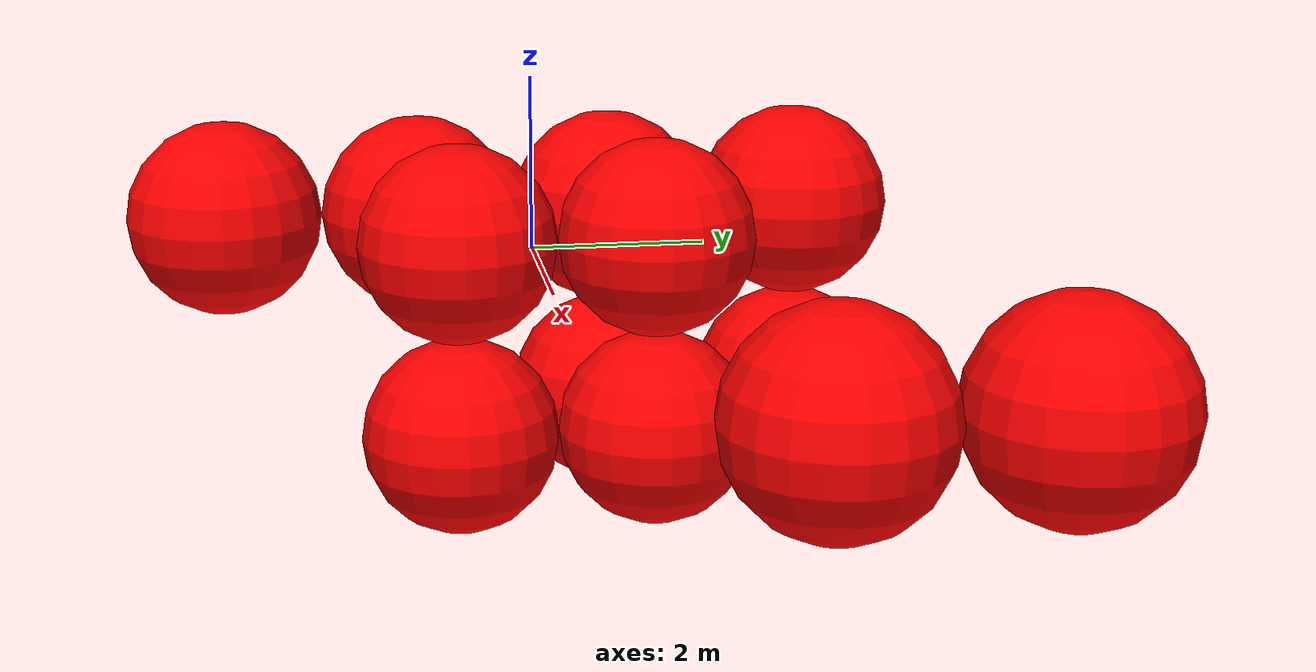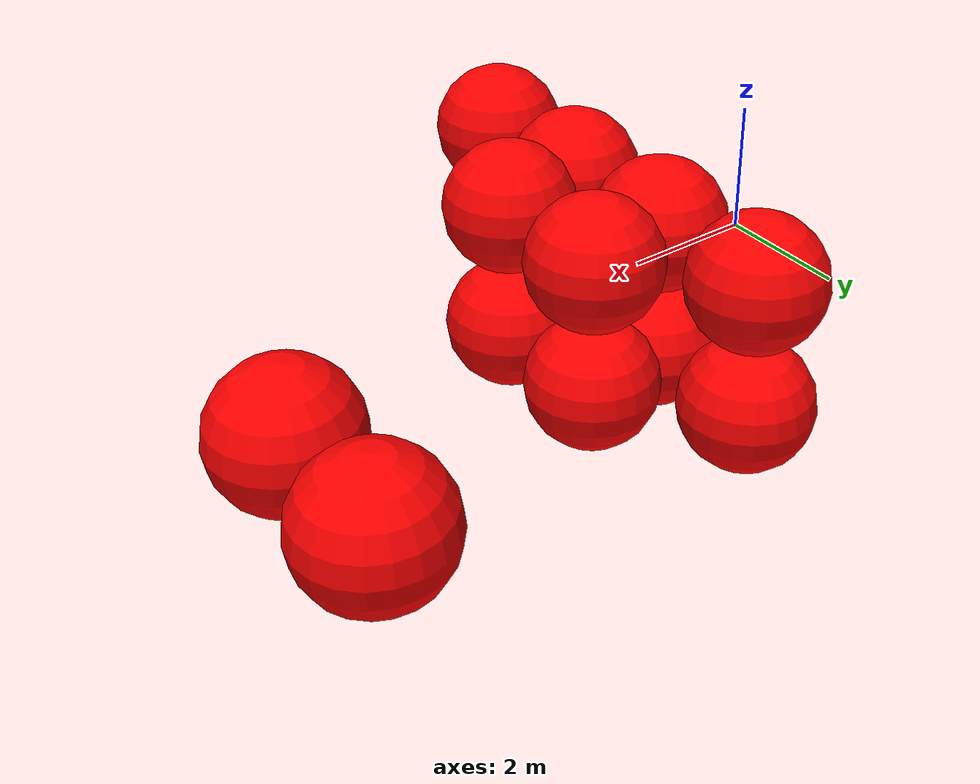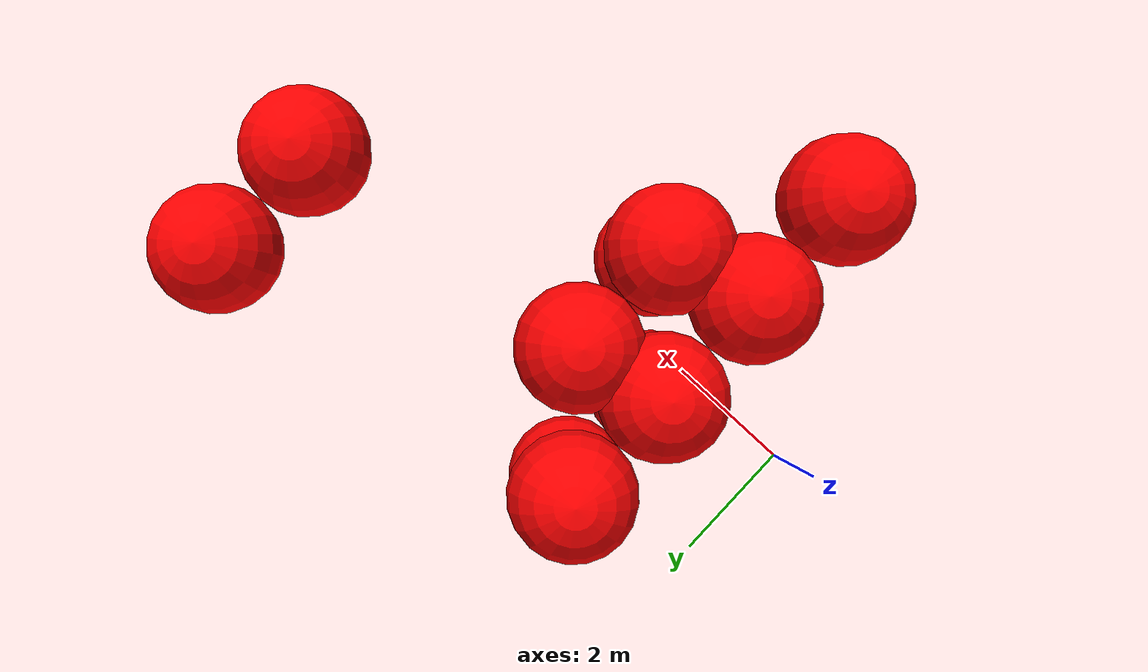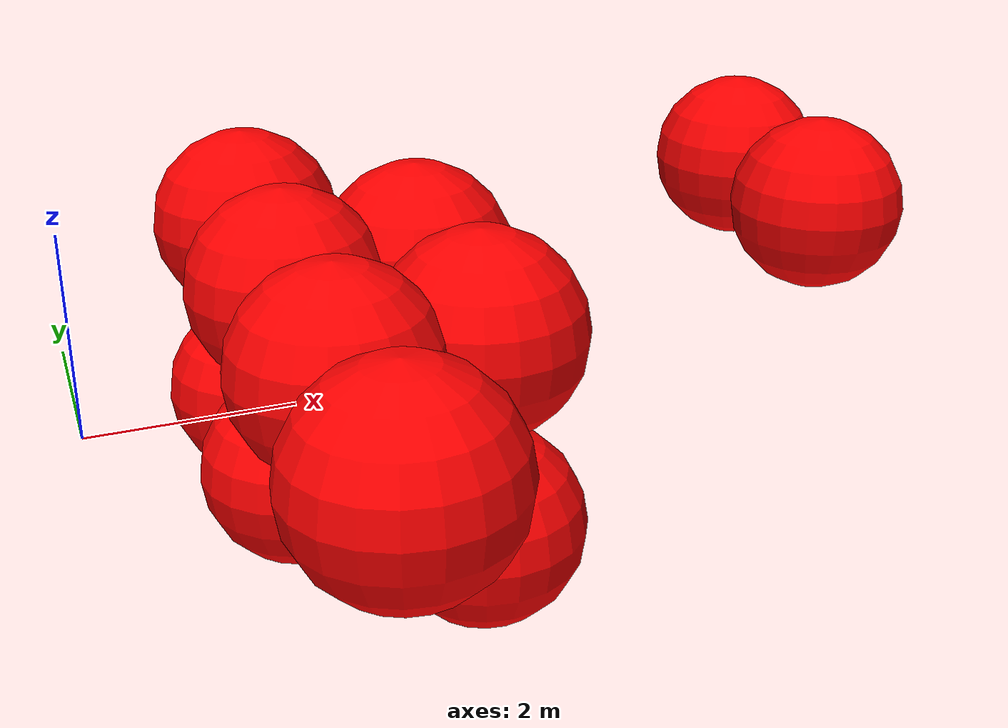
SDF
<sdf version="1.8">
 <world name="3d_world">
  <model name="obstacle_9" canonical_link="obstacle">
   <static>true</static>
   <pose relative_to="world">3.52 -1.14 -1.00 0 0 0</pose>
   <link name="obstacle">
    <pose relative_to="__model__">0.0 0 0.0 0 0 0</pose>
    <visual name="visual">
     <geometry><sphere><radius>1.00</radius></sphere></geometry>
     <material>
      <ambient>1.0 0.0 0.0 1</ambient>
      <diffuse>1.0 0.0 0.0 1</diffuse>
      <specular>1.0 0.0 0.0 1</specular>
     </material>
    </visual>
    <collision name="collision"><geometry><sphere><radius>1.00</radius></sphere></geometry></collision>
    <enable_gravity>false</enable_gravity>
   </link>
   <plugin filename="ignition-gazebo-velocity-control-system" name="ignition::gazebo::systems::VelocityControl">
    <initial_linear>0.00 0.00 0.00</initial_linear>
    <initial_angular>0 0 0</initial_angular>
   </plugin>
   <plugin filename="ignition-gazebo-odometry-publisher-system" name="ignition::gazebo::systems::OdometryPublisher">
    <dimensions>3</dimensions>
   </plugin>
  </model>
  <model name="obstacle_10" canonical_link="obstacle">
   <static>true</static>
   <pose relative_to="world">3.52 0.86 -1.00 0 0 0</pose>
   <link name="obstacle">
    <pose relative_to="__model__">0.0 0 0.0 0 0 0</pose>
    <visual name="visual">
     <geometry><sphere><radius>1.00</radius></sphere></geometry>
     <material>
      <ambient>1.0 0.0 0.0 1</ambient>
      <diffuse>1.0 0.0 0.0 1</diffuse>
      <specular>1.0 0.0 0.0 1</specular>
     </material>
    </visual>
    <collision name="collision"><geometry><sphere><radius>1.00</radius></sphere></geometry></collision>
    <enable_gravity>false</enable_gravity>
   </link>
   <plugin filename="ignition-gazebo-velocity-control-system" name="ignition::gazebo::systems::VelocityControl">
    <initial_linear>0.00 0.00 0.00</initial_linear>
    <initial_angular>0 0 0</initial_angular>
   </plugin>
   <plugin filename="ignition-gazebo-odometry-publisher-system" name="ignition::gazebo::systems::OdometryPublisher">
    <dimensions>3</dimensions>
   </plugin>
  </model>
  <model name="obstacle_11" canonical_link="obstacle">
   <static>true</static>
   <pose relative_to="world">3.52 -1.14 1.00 0 0 0</pose>
   <link name="obstacle">
    <pose relative_to="__model__">0.0 0 0.0 0 0 0</pose>
    <visual name="visual">
     <geometry><sphere><radius>1.00</radius></sphere></geometry>
     <material>
      <ambient>1.0 0.0 0.0 1</ambient>
      <diffuse>1.0 0.0 0.0 1</diffuse>
      <specular>1.0 0.0 0.0 1</specular>
     </material>
    </visual>
    <collision name="collision"><geometry><sphere><radius>1.00</radius></sphere></geometry></collision>
    <enable_gravity>false</enable_gravity>
   </link>
   <plugin filename="ignition-gazebo-velocity-control-system" name="ignition::gazebo::systems::VelocityControl">
    <initial_linear>0.00 0.00 0.00</initial_linear>
    <initial_angular>0 0 0</initial_angular>
   </plugin>
   <plugin filename="ignition-gazebo-odometry-publisher-system" name="ignition::gazebo::systems::OdometryPublisher">
    <dimensions>3</dimensions>
   </plugin>
  </model>
  <model name="obstacle_12" canonical_link="obstacle">
   <static>true</static>
   <pose relative_to="world">3.52 0.86 1.00 0 0 0</pose>
   <link name="obstacle">
    <pose relative_to="__model__">0.0 0 0.0 0 0 0</pose>
    <visual name="visual">
     <geometry><sphere><radius>1.00</radius></sphere></geometry>
     <material>
      <ambient>1.0 0.0 0.0 1</ambient>
      <diffuse>1.0 0.0 0.0 1</diffuse>
      <specular>1.0 0.0 0.0 1</specular>
     </material>
    </visual>
    <collision name="collision"><geometry><sphere><radius>1.00</radius></sphere></geometry></collision>
    <enable_gravity>false</enable_gravity>
   </link>
   <plugin filename="ignition-gazebo-velocity-control-system" name="ignition::gazebo::systems::VelocityControl">
    <initial_linear>0.00 0.00 0.00</initial_linear>
    <initial_angular>0 0 0</initial_angular>
   </plugin>
   <plugin filename="ignition-gazebo-odometry-publisher-system" name="ignition::gazebo::systems::OdometryPublisher">
    <dimensions>3</dimensions>
   </plugin>
  </model>
  <model name="obstacle_15" canonical_link="obstacle">
   <static>true</static>
   <pose relative_to="world">2.10 0.56 -1.00 0 0 0</pose>
   <link name="obstacle">
    <pose relative_to="__model__">0.0 0 0.0 0 0 0</pose>
    <visual name="visual">
     <geometry><sphere><radius>1.00</radius></sphere></geometry>
     <material>
      <ambient>1.0 0.0 0.0 1</ambient>
      <diffuse>1.0 0.0 0.0 1</diffuse>
      <specular>1.0 0.0 0.0 1</specular>
     </material>
    </visual>
    <collision name="collision"><geometry><sphere><radius>1.00</radius></sphere></geometry></collision>
    <enable_gravity>false</enable_gravity>
   </link>
   <plugin filename="ignition-gazebo-velocity-control-system" name="ignition::gazebo::systems::VelocityControl">
    <initial_linear>0.00 0.00 0.00</initial_linear>
    <initial_angular>0 0 0</initial_angular>
   </plugin>
   <plugin filename="ignition-gazebo-odometry-publisher-system" name="ignition::gazebo::systems::OdometryPublisher">
    <dimensions>3</dimensions>
   </plugin>
  </model>
  <model name="obstacle_16" canonical_link="obstacle">
   <static>true</static>
   <pose relative_to="world">2.10 2.56 -1.00 0 0 0</pose>
   <link name="obstacle">
    <pose relative_to="__model__">0.0 0 0.0 0 0 0</pose>
    <visual name="visual">
     <geometry><sphere><radius>1.00</radius></sphere></geometry>
     <material>
      <ambient>1.0 0.0 0.0 1</ambient>
      <diffuse>1.0 0.0 0.0 1</diffuse>
      <specular>1.0 0.0 0.0 1</specular>
     </material>
    </visual>
    <collision name="collision"><geometry><sphere><radius>1.00</radius></sphere></geometry></collision>
    <enable_gravity>false</enable_gravity>
   </link>
   <plugin filename="ignition-gazebo-velocity-control-system" name="ignition::gazebo::systems::VelocityControl">
    <initial_linear>0.00 0.00 0.00</initial_linear>
    <initial_angular>0 0 0</initial_angular>
   </plugin>
   <plugin filename="ignition-gazebo-odometry-publisher-system" name="ignition::gazebo::systems::OdometryPublisher">
    <dimensions>3</dimensions>
   </plugin>
  </model>
  <model name="obstacle_17" canonical_link="obstacle">
   <static>true</static>
   <pose relative_to="world">2.10 -3.44 1.00 0 0 0</pose>
   <link name="obstacle">
    <pose relative_to="__model__">0.0 0 0.0 0 0 0</pose>
    <visual name="visual">
     <geometry><sphere><radius>1.00</radius></sphere></geometry>
     <material>
      <ambient>1.0 0.0 0.0 1</ambient>
      <diffuse>1.0 0.0 0.0 1</diffuse>
      <specular>1.0 0.0 0.0 1</specular>
     </material>
    </visual>
    <collision name="collision"><geometry><sphere><radius>1.00</radius></sphere></geometry></collision>
    <enable_gravity>false</enable_gravity>
   </link>
   <plugin filename="ignition-gazebo-velocity-control-system" name="ignition::gazebo::systems::VelocityControl">
    <initial_linear>0.00 0.00 0.00</initial_linear>
    <initial_angular>0 0 0</initial_angular>
   </plugin>
   <plugin filename="ignition-gazebo-odometry-publisher-system" name="ignition::gazebo::systems::OdometryPublisher">
    <dimensions>3</dimensions>
   </plugin>
  </model>
  <model name="obstacle_18" canonical_link="obstacle">
   <static>true</static>
   <pose relative_to="world">2.10 -1.44 1.00 0 0 0</pose>
   <link name="obstacle">
    <pose relative_to="__model__">0.0 0 0.0 0 0 0</pose>
    <visual name="visual">
     <geometry><sphere><radius>1.00</radius></sphere></geometry>
     <material>
      <ambient>1.0 0.0 0.0 1</ambient>
      <diffuse>1.0 0.0 0.0 1</diffuse>
      <specular>1.0 0.0 0.0 1</specular>
     </material>
    </visual>
    <collision name="collision"><geometry><sphere><radius>1.00</radius></sphere></geometry></collision>
    <enable_gravity>false</enable_gravity>
   </link>
   <plugin filename="ignition-gazebo-velocity-control-system" name="ignition::gazebo::systems::VelocityControl">
    <initial_linear>0.00 0.00 0.00</initial_linear>
    <initial_angular>0 0 0</initial_angular>
   </plugin>
   <plugin filename="ignition-gazebo-odometry-publisher-system" name="ignition::gazebo::systems::OdometryPublisher">
    <dimensions>3</dimensions>
   </plugin>
  </model>
  <model name="obstacle_19" canonical_link="obstacle">
   <static>true</static>
   <pose relative_to="world">2.10 0.56 1.00 0 0 0</pose>
   <link name="obstacle">
    <pose relative_to="__model__">0.0 0 0.0 0 0 0</pose>
    <visual name="visual">
     <geometry><sphere><radius>1.00</radius></sphere></geometry>
     <material>
      <ambient>1.0 0.0 0.0 1</ambient>
      <diffuse>1.0 0.0 0.0 1</diffuse>
      <specular>1.0 0.0 0.0 1</specular>
     </material>
    </visual>
    <collision name="collision"><geometry><sphere><radius>1.00</radius></sphere></geometry></collision>
    <enable_gravity>false</enable_gravity>
   </link>
   <plugin filename="ignition-gazebo-velocity-control-system" name="ignition::gazebo::systems::VelocityControl">
    <initial_linear>0.00 0.00 0.00</initial_linear>
    <initial_angular>0 0 0</initial_angular>
   </plugin>
   <plugin filename="ignition-gazebo-odometry-publisher-system" name="ignition::gazebo::systems::OdometryPublisher">
    <dimensions>3</dimensions>
   </plugin>
  </model>
  <model name="obstacle_20" canonical_link="obstacle">
   <static>true</static>
   <pose relative_to="world">2.10 2.56 1.00 0 0 0</pose>
   <link name="obstacle">
    <pose relative_to="__model__">0.0 0 0.0 0 0 0</pose>
    <visual name="visual">
     <geometry><sphere><radius>1.00</radius></sphere></geometry>
     <material>
      <ambient>1.0 0.0 0.0 1</ambient>
      <diffuse>1.0 0.0 0.0 1</diffuse>
      <specular>1.0 0.0 0.0 1</specular>
     </material>
    </visual>
    <collision name="collision"><geometry><sphere><radius>1.00</radius></sphere></geometry></collision>
    <enable_gravity>false</enable_gravity>
   </link>
   <plugin filename="ignition-gazebo-velocity-control-system" name="ignition::gazebo::systems::VelocityControl">
    <initial_linear>0.00 0.00 0.00</initial_linear>
    <initial_angular>0 0 0</initial_angular>
   </plugin>
   <plugin filename="ignition-gazebo-odometry-publisher-system" name="ignition::gazebo::systems::OdometryPublisher">
    <dimensions>3</dimensions>
   </plugin>
  </model>
  <model name="obstacle_21" canonical_link="obstacle">
   <static>false</static>
   <pose relative_to="world">8.59 1.47 0.76 0 0 0</pose>
   <link name="obstacle">
    <pose relative_to="__model__">0.0 0 0.0 0 0 0</pose>
    <visual name="visual">
     <geometry><sphere><radius>1.00</radius></sphere></geometry>
     <material>
      <ambient>1.0 0.0 0.0 1</ambient>
      <diffuse>1.0 0.0 0.0 1</diffuse>
      <specular>1.0 0.0 0.0 1</specular>
     </material>
    </visual>
    <collision name="collision"><geometry><sphere><radius>1.00</radius></sphere></geometry></collision>
    <enable_gravity>false</enable_gravity>
   </link>
   <plugin filename="ignition-gazebo-velocity-control-system" name="ignition::gazebo::systems::VelocityControl">
    <initial_linear>0.00 -0.87 -0.22</initial_linear>
    <initial_angular>0 0 0</initial_angular>
   </plugin>
   <plugin filename="ignition-gazebo-odometry-publisher-system" name="ignition::gazebo::systems::OdometryPublisher">
    <dimensions>3</dimensions>
   </plugin>
  </model>
  <model name="obstacle_22" canonical_link="obstacle">
   <static>false</static>
   <pose relative_to="world">8.59 3.47 0.76 0 0 0</pose>
   <link name="obstacle">
    <pose relative_to="__model__">0.0 0 0.0 0 0 0</pose>
    <visual name="visual">
     <geometry><sphere><radius>1.00</radius></sphere></geometry>
     <material>
      <ambient>1.0 0.0 0.0 1</ambient>
      <diffuse>1.0 0.0 0.0 1</diffuse>
      <specular>1.0 0.0 0.0 1</specular>
     </material>
    </visual>
    <collision name="collision"><geometry><sphere><radius>1.00</radius></sphere></geometry></collision>
    <enable_gravity>false</enable_gravity>
   </link>
   <plugin filename="ignition-gazebo-velocity-control-system" name="ignition::gazebo::systems::VelocityControl">
    <initial_linear>0.00 -0.87 -0.22</initial_linear>
    <initial_angular>0 0 0</initial_angular>
   </plugin>
   <plugin filename="ignition-gazebo-odometry-publisher-system" name="ignition::gazebo::systems::OdometryPublisher">
    <dimensions>3</dimensions>
   </plugin>
  </model>
 </world>
</sdf>
